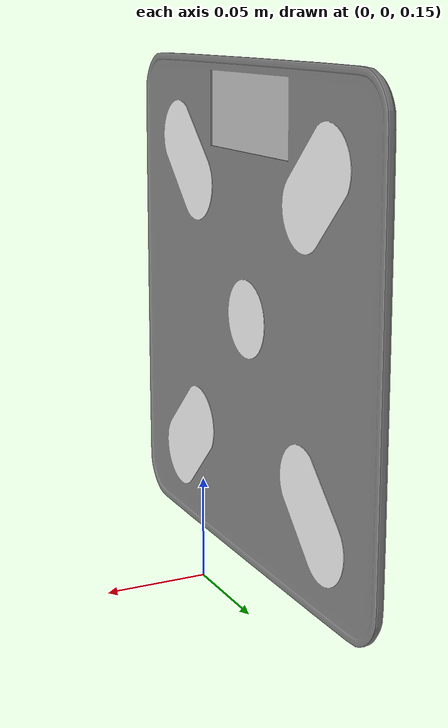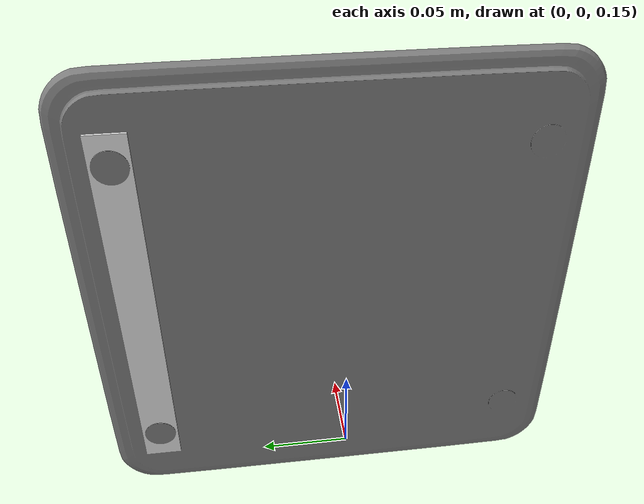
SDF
<?xml version="1.0" ?>
<sdf version="1.6">
  <model name="body_weight_1">
    <static>false</static>
    <link name="link">
      <pose>0 0 0.1208 0 0 0</pose>
      <inertial>
        <mass>1.0</mass>
        <inertia>
          <ixx>0.009736</ixx><ixy>0</ixy><ixz>0</ixz>
          <iyy>0.004909</iyy><iyz>0</iyz>
          <izz>0.004909</izz>
        </inertia>
      </inertial>
      <collision name="collision">
        <geometry>
          <box><size>0.022 0.2417 0.2417</size></box>
        </geometry>
      </collision>
      <visual name="visual">
        <geometry>
          <mesh><uri>model://body_weight_1/meshes/model.dae</uri></mesh>
        </geometry>
      </visual>
    </link>
  </model>
</sdf>
